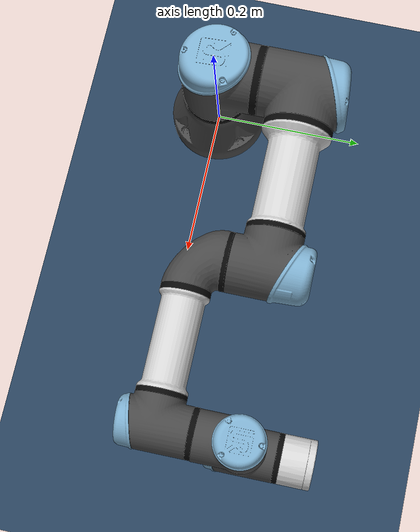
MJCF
<mujoco model="ur3e scene">
  <compiler angle="radian" meshdir="assets/"/>

  <option timestep="0.001"/>

  <size nkey="1"/>

  <visual>
    <global azimuth="120" elevation="-20"/>
    <headlight diffuse="0.6 0.6 0.6" specular="0 0 0"/>
    <rgba haze="0.15 0.25 0.35 1"/>
  </visual>

  <statistic extent="0.8" center="0.3 0 0.4"/>

  <default>
    <default class="ur3e">
      <material shininess="0.25"/>
      <joint range="-6.28319 6.28319" armature="0.1"/>
      <site size="0.001 0.005 0.005" group="4" rgba="0.5 0.5 0.5 0.3"/>
      <general ctrlrange="-6.2831 6.2831" forcerange="-56 56" biastype="affine" gainprm="1000" biasprm="0 -1000 -200"/>
      <default class="size2">
        <joint damping="2"/>
      </default>
      <default class="size1">
        <general forcerange="-28 28" gainprm="500" biasprm="0 -500 -100"/>
      </default>
      <default class="size0">
        <general forcerange="-12 12" gainprm="250" biasprm="0 -250 -50"/>
      </default>
      <default class="visual">
        <geom type="mesh" contype="0" conaffinity="0" group="2"/>
      </default>
      <default class="collision">
        <geom type="capsule" group="3"/>
        <default class="eef_collision">
          <geom type="cylinder"/>
        </default>
      </default>
    </default>
  </default>

  <asset>
    <texture type="skybox" colorspace="auto" builtin="gradient" rgb1="0.3 0.5 0.7" rgb2="0 0 0" width="512" height="3072"/>
    <texture type="2d" colorspace="auto" name="groundplane" builtin="checker" mark="edge" rgb1="0.2 0.3 0.4" rgb2="0.1 0.2 0.3" markrgb="0.8 0.8 0.8" width="300" height="300"/>
    <material name="black" class="ur3e" rgba="0.033 0.033 0.033 1"/>
    <material name="jointgray" class="ur3e" rgba="0.278 0.278 0.278 1"/>
    <material name="linkgray" class="ur3e" rgba="0.82 0.82 0.82 1"/>
    <material name="urblue" class="ur3e" rgba="0.49 0.678 0.8 1"/>
    <material name="groundplane" texture="groundplane" texuniform="true" texrepeat="5 5" reflectance="0.2"/>
    <mesh name="base_0" content_type="model/obj" file="base_0.obj"/>
    <mesh name="base_1" content_type="model/obj" file="base_1.obj"/>
    <mesh name="forearm_0" content_type="model/obj" file="forearm_0.obj"/>
    <mesh name="forearm_1" content_type="model/obj" file="forearm_1.obj"/>
    <mesh name="forearm_2" content_type="model/obj" file="forearm_2.obj"/>
    <mesh name="forearm_3" content_type="model/obj" file="forearm_3.obj"/>
    <mesh name="forearm_4" content_type="model/obj" file="forearm_4.obj"/>
    <mesh name="forearm_5" content_type="model/obj" file="forearm_5.obj"/>
    <mesh name="forearm_6" content_type="model/obj" file="forearm_6.obj"/>
    <mesh name="shoulder_0" content_type="model/obj" file="shoulder_0.obj"/>
    <mesh name="shoulder_1" content_type="model/obj" file="shoulder_1.obj"/>
    <mesh name="shoulder_2" content_type="model/obj" file="shoulder_2.obj"/>
    <mesh name="upperarm_0" content_type="model/obj" file="upperarm_0.obj"/>
    <mesh name="upperarm_1" content_type="model/obj" file="upperarm_1.obj"/>
    <mesh name="upperarm_2" content_type="model/obj" file="upperarm_2.obj"/>
    <mesh name="upperarm_3" content_type="model/obj" file="upperarm_3.obj"/>
    <mesh name="upperarm_4" content_type="model/obj" file="upperarm_4.obj"/>
    <mesh name="upperarm_5" content_type="model/obj" file="upperarm_5.obj"/>
    <mesh name="upperarm_6" content_type="model/obj" file="upperarm_6.obj"/>
    <mesh name="upperarm_7" content_type="model/obj" file="upperarm_7.obj"/>
    <mesh name="upperarm_8" content_type="model/obj" file="upperarm_8.obj"/>
    <mesh name="wrist1_0" content_type="model/obj" file="wrist1_0.obj"/>
    <mesh name="wrist1_1" content_type="model/obj" file="wrist1_1.obj"/>
    <mesh name="wrist1_2" content_type="model/obj" file="wrist1_2.obj"/>
    <mesh name="wrist2_0" content_type="model/obj" file="wrist2_0.obj"/>
    <mesh name="wrist2_1" content_type="model/obj" file="wrist2_1.obj"/>
    <mesh name="wrist2_2" content_type="model/obj" file="wrist2_2.obj"/>
    <mesh name="wrist3" content_type="model/obj" file="wrist3.obj"/>
  </asset>

  <worldbody>
    <geom name="floor" size="0 0 0.05" type="plane" material="groundplane"/>
    <light name="top" pos="0 0 1" dir="0 0 -1"/>
    <light pos="0 0 1.5" dir="0 0 -1" type="directional"/>
    <body name="base" childclass="ur3e">
      <inertial pos="0 0 0" mass="4" diaginertia="0.00443333 0.00443333 0.0072"/>
      <geom class="visual" pos="0 0 0" quat="0.707107 0.707107 0 0" material="black" mesh="base_0"/>
      <geom class="visual" quat="0.707107 0.707107 0 0" material="jointgray" mesh="base_1"/>
      <body name="shoulder_link" pos="0 0 0.15185">
        <inertial pos="0 0 0" mass="2" diaginertia="0.00809316 0.00809316 0.005625"/>
        <joint name="robot0:shoulder_pan_joint" class="size2" pos="0 0 0" axis="0 0 1"/>
        <geom class="visual" pos="0 0 0" quat="0.707107 0.707107 0 0" material="black" mesh="shoulder_0"/>
        <geom class="visual" quat="0.707107 0.707107 0 0" material="urblue" mesh="shoulder_1"/>
        <geom class="visual" quat="0.707107 0.707107 0 0" material="jointgray" mesh="shoulder_2"/>
        <geom class="collision" size="0.055 0.055" pos="0 0 -0.03"/>
        <body name="upper_arm_link" pos="0 0.12 0" quat="0.707107 0 0.707107 0">
          <inertial pos="-0.121825 0 0.12" quat="0.707107 0 0.707107 0" mass="3.42" diaginertia="0.0217285 0.0217285 0.00961875"/>
          <joint name="robot0:shoulder_lift_joint" class="size2" pos="0 0 0" axis="0 1 0"/>
          <geom class="visual" quat="0.707107 0.707107 0 0" material="urblue" mesh="upperarm_0"/>
          <geom class="visual" quat="0.707107 0.707107 0 0" material="jointgray" mesh="upperarm_1"/>
          <geom class="visual" quat="0.707107 0.707107 0 0" material="black" mesh="upperarm_2"/>
          <geom class="visual" pos="0 0 0" quat="0.707107 0.707107 0 0" material="linkgray" mesh="upperarm_3"/>
          <geom class="visual" pos="0 0 0" quat="0.707107 0.707107 0 0" material="black" mesh="upperarm_4"/>
          <geom class="visual" pos="0 0 0" quat="0.707107 0.707107 0 0" material="urblue" mesh="upperarm_5"/>
          <geom class="visual" pos="0 0 0" quat="0.707107 0.707107 0 0" material="black" mesh="upperarm_6"/>
          <geom class="visual" pos="0 0 0" quat="0.707107 0.707107 0 0" material="jointgray" mesh="upperarm_7"/>
          <geom class="visual" pos="0 0 0" quat="0.707107 0.707107 0 0" material="black" mesh="upperarm_8"/>
          <geom class="collision" size="0.055 0.055" pos="0 -0.03 0" quat="0.707107 0.707107 0 0"/>
          <geom class="collision" size="0.05 0.1" pos="0 0 0.15"/>
          <body name="forearm_link" pos="0 -0.0921 0.24355">
            <inertial pos="-0.1066 0 0.027" quat="0.707107 0 0.707107 0" mass="1.43" diaginertia="0.00654457 0.00654457 0.00354375"/>
            <joint name="robot0:elbow_joint" class="size1" pos="0 0 0" axis="0 1 0" range="-3.14159 3.14159"/>
            <geom class="visual" quat="0.707107 0.707107 0 0" material="jointgray" mesh="forearm_0"/>
            <geom class="visual" quat="0.707107 0.707107 0 0" material="black" mesh="forearm_1"/>
            <geom class="visual" pos="0 0 0" quat="0.707107 0.707107 0 0" material="linkgray" mesh="forearm_2"/>
            <geom class="visual" pos="0 0 0" quat="0.707107 0.707107 0 0" material="black" mesh="forearm_3"/>
            <geom class="visual" pos="0 0 0" quat="0.707107 0.707107 0 0" material="urblue" mesh="forearm_4"/>
            <geom class="visual" pos="0 0 0" quat="0.707107 0.707107 0 0" material="black" mesh="forearm_5"/>
            <geom class="visual" pos="0 0 0" quat="0.707107 0.707107 0 0" material="jointgray" mesh="forearm_6"/>
            <geom class="collision" size="0.045 0.045" pos="0 0.08 0" quat="0.707107 0.707107 0 0"/>
            <geom class="collision" size="0.04 0.1" pos="0 0 0.1"/>
            <body name="wrist_1_link" pos="0 0 0.2132" quat="0.707107 0 0.707107 0">
              <inertial pos="0 0 0" quat="0.5 0.5 -0.5 0.5" mass="0.8" diaginertia="0.00225 0.002085 0.002085"/>
              <joint name="robot0:wrist_1_joint" class="size0" pos="0 0 0" axis="0 1 0"/>
              <geom class="visual" pos="0 0 0" quat="0.707107 0.707107 0 0" material="urblue" mesh="wrist1_0"/>
              <geom class="visual" pos="0 0 0" quat="0.707107 0.707107 0 0" material="jointgray" mesh="wrist1_1"/>
              <geom class="visual" pos="0 0 0" quat="0.707107 0.707107 0 0" material="black" mesh="wrist1_2"/>
              <geom class="collision" size="0.04 0.07" pos="0 0.05 0" quat="0.707107 0.707107 0 0"/>
              <body name="wrist_2_link" pos="0 0.104 0">
                <inertial pos="0 0 0" quat="0.5 0.5 -0.5 0.5" mass="0.8" diaginertia="0.00225 0.002085 0.002085"/>
                <joint name="robot0:wrist_2_joint" class="size0" pos="0 0 0" axis="0 0 1"/>
                <geom class="visual" quat="0.707107 0.707107 0 0" material="jointgray" mesh="wrist2_0"/>
                <geom class="visual" pos="0 0 0" quat="0.707107 0.707107 0 0" material="black" mesh="wrist2_1"/>
                <geom class="visual" pos="0 0 0" quat="0.707107 0.707107 0 0" material="urblue" mesh="wrist2_2"/>
                <geom class="collision" size="0.04 0.06" pos="0 0 0.04"/>
                <geom class="collision" size="0.038 0.045" pos="0 0.026 0.085" quat="0.707107 0.707107 0 0"/>
                <body name="wrist_3_link" pos="0 0 0.085">
                  <inertial pos="0 0 -0.02" quat="0.5 0.5 -0.5 0.5" mass="0.26" diaginertia="0.0001792 0.000136267 0.000136267"/>
                  <joint name="robot0:wrist_3_joint" class="size0" pos="0 0 0" axis="0 1 0"/>
                  <geom class="visual" pos="0 0 0" quat="0.707107 0.707107 0 0" material="linkgray" mesh="wrist3"/>
                  <geom class="eef_collision" size="0.04 0.02" pos="0 0.08 0" quat="0.707107 0.707107 0 0"/>
                  <site name="attachment_site" pos="0 0.1 0" quat="-0.707107 0.707107 0 0"/>
                </body>
              </body>
            </body>
          </body>
        </body>
      </body>
    </body>
  </worldbody>

  <actuator>
    <general name="shoulder_pan" class="size2" joint="robot0:shoulder_pan_joint"/>
    <general name="shoulder_lift" class="size2" joint="robot0:shoulder_lift_joint"/>
    <general name="elbow" class="size1" joint="robot0:elbow_joint"/>
    <general name="wrist_1" class="size0" joint="robot0:wrist_1_joint"/>
    <general name="wrist_2" class="size0" joint="robot0:wrist_2_joint"/>
    <general name="wrist_3" class="size0" joint="robot0:wrist_3_joint"/>
  </actuator>

  <keyframe>
    <key name="home" qpos="-1.5708 -1.5708 1.5708 -1.5708 -1.5708 0" ctrl="-1.5708 -1.5708 1.5708 -1.5708 -1.5708 0"/>
  </keyframe>
</mujoco>
